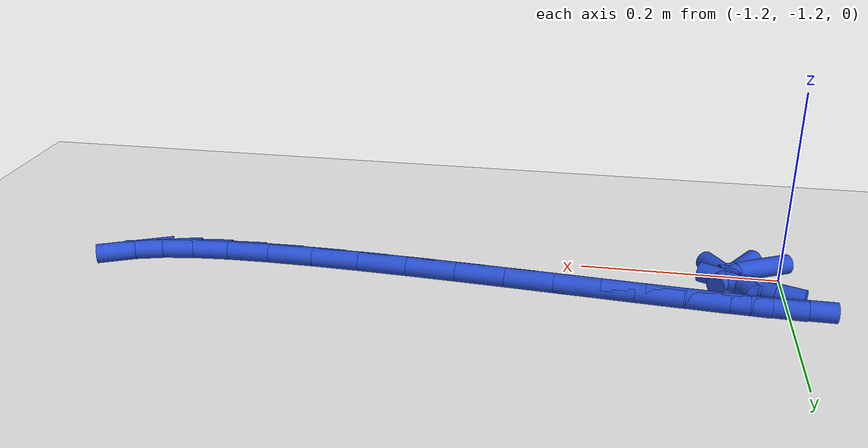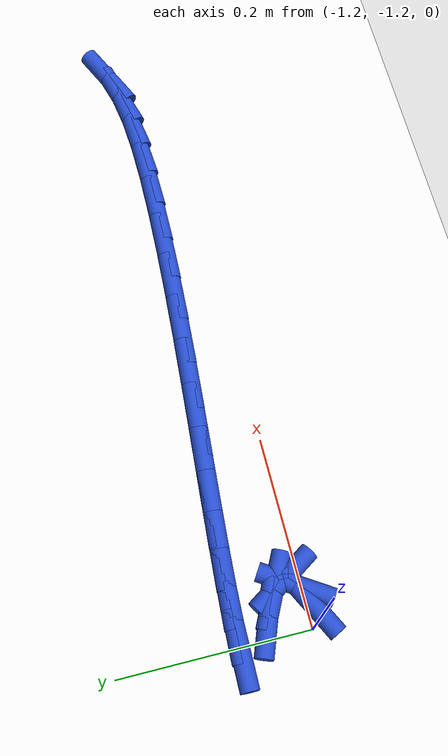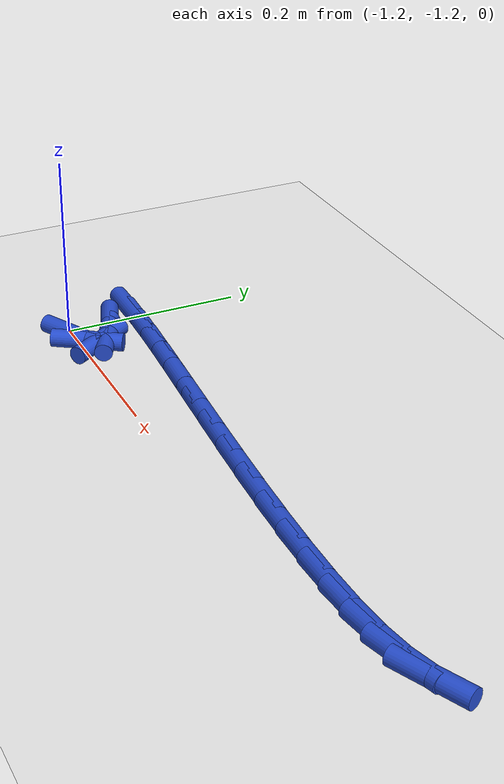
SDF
<sdf version="1.6">
 <world name="default">
  <model name="ground_plane">
   <static>1</static>
   <link name="link">
    <collision name="collision">
     <geometry><plane><normal>0 0 1</normal><size>100 100</size></plane></geometry>
     <surface><friction><ode><mu>100</mu><mu2>50</mu2></ode></friction></surface>
    </collision>
    <visual name="visual">
     <cast_shadows>0</cast_shadows>
     <geometry><plane><normal>0 0 1</normal><size>100 100</size></plane></geometry>
     <material>
      <script><uri>file://media/materials/scripts/gazebo.material</uri><name>Gazebo/WhiteGlow</name></script>
     </material>
    </visual>
   </link>
  </model>
  <model name="line">
   <link name="link_192">
    <pose>-1.1745917378531383 -1.2043105066418216 0.01 0 1.57 0.4677497410405314</pose>
    <collision name="collision">
     <geometry><cylinder><radius>0.01</radius><length>0.08</length></cylinder></geometry>
    </collision>
    <visual name="visual">
     <material>
      <script><name>Gazebo/Blue</name><uri>file://media/materials/scripts/gazebo.material</uri></script>
     </material>
     <geometry><cylinder><radius>0.01</radius><length>0.08</length></cylinder></geometry>
    </visual>
   </link>
   <link name="link_193">
    <pose>-1.1547757456888592 -1.194300691380257 0.01 0 1.57 0.9987103225946377</pose>
    <collision name="collision">
     <geometry><cylinder><radius>0.01</radius><length>0.08</length></cylinder></geometry>
    </collision>
    <visual name="visual">
     <material>
      <script><name>Gazebo/Blue</name><uri>file://media/materials/scripts/gazebo.material</uri></script>
     </material>
     <geometry><cylinder><radius>0.01</radius><length>0.08</length></cylinder></geometry>
    </visual>
   </link>
   <link name="link_194">
    <pose>-1.1476225590907827 -1.1831918014375011 0.01 0 1.57 -0.9948169776222888</pose>
    <collision name="collision">
     <geometry><cylinder><radius>0.01</radius><length>0.08</length></cylinder></geometry>
    </collision>
    <visual name="visual">
     <material>
      <script><name>Gazebo/Blue</name><uri>file://media/materials/scripts/gazebo.material</uri></script>
     </material>
     <geometry><cylinder><radius>0.01</radius><length>0.08</length></cylinder></geometry>
    </visual>
   </link>
   <link name="link_195">
    <pose>-1.155301146978621 -1.1713683486960287 0.01 0 1.57 -0.4678025852367729</pose>
    <collision name="collision">
     <geometry><cylinder><radius>0.01</radius><length>0.08</length></cylinder></geometry>
    </collision>
    <visual name="visual">
     <material>
      <script><name>Gazebo/Blue</name><uri>file://media/materials/scripts/gazebo.material</uri></script>
     </material>
     <geometry><cylinder><radius>0.01</radius><length>0.08</length></cylinder></geometry>
    </visual>
   </link>
   <link name="link_196">
    <pose>-1.1792627918260172 -1.1592628163902303 0.01 0 1.57 -0.36451311378073226</pose>
    <collision name="collision">
     <geometry><cylinder><radius>0.01</radius><length>0.08</length></cylinder></geometry>
    </collision>
    <visual name="visual">
     <material>
      <script><name>Gazebo/Blue</name><uri>file://media/materials/scripts/gazebo.material</uri></script>
     </material>
     <geometry><cylinder><radius>0.01</radius><length>0.08</length></cylinder></geometry>
    </visual>
   </link>
   <link name="link_202">
    <pose>-1.2026771078357616 -1.124938108552081 0.01 0 1.57 -0.015929395568199233</pose>
    <collision name="collision">
     <geometry><cylinder><radius>0.01</radius><length>0.08</length></cylinder></geometry>
    </collision>
    <visual name="visual">
     <material>
      <script><name>Gazebo/Blue</name><uri>file://media/materials/scripts/gazebo.material</uri></script>
     </material>
     <geometry><cylinder><radius>0.01</radius><length>0.08</length></cylinder></geometry>
    </visual>
   </link>
   <link name="link_203">
    <pose>-1.1759052530190301 -1.1253646040919565 0.01 0 1.57 -0.0478047484425077</pose>
    <collision name="collision">
     <geometry><cylinder><radius>0.01</radius><length>0.08</length></cylinder></geometry>
    </collision>
    <visual name="visual">
     <material>
      <script><name>Gazebo/Blue</name><uri>file://media/materials/scripts/gazebo.material</uri></script>
     </material>
     <geometry><cylinder><radius>0.01</radius><length>0.08</length></cylinder></geometry>
    </visual>
   </link>
   <link name="link_204">
    <pose>-1.1427871915544134 -1.1269490118189078 0.01 0 1.57 -0.06518155798572671</pose>
    <collision name="collision">
     <geometry><cylinder><radius>0.01</radius><length>0.08</length></cylinder></geometry>
    </collision>
    <visual name="visual">
     <material>
      <script><name>Gazebo/Blue</name><uri>file://media/materials/scripts/gazebo.material</uri></script>
     </material>
     <geometry><cylinder><radius>0.01</radius><length>0.08</length></cylinder></geometry>
    </visual>
   </link>
   <link name="link_205">
    <pose>-1.1042642541751548 -1.1294635590360718 0.01 0 1.57 -0.07469624490263446</pose>
    <collision name="collision">
     <geometry><cylinder><radius>0.01</radius><length>0.08</length></cylinder></geometry>
    </collision>
    <visual name="visual">
     <material>
      <script><name>Gazebo/Blue</name><uri>file://media/materials/scripts/gazebo.material</uri></script>
     </material>
     <geometry><cylinder><radius>0.01</radius><length>0.08</length></cylinder></geometry>
    </visual>
   </link>
   <link name="link_206">
    <pose>-1.061277771614497 -1.132680473046587 0.01 0 1.57 -0.0792063715145797</pose>
    <collision name="collision">
     <geometry><cylinder><radius>0.01</radius><length>0.08</length></cylinder></geometry>
    </collision>
    <visual name="visual">
     <material>
      <script><name>Gazebo/Blue</name><uri>file://media/materials/scripts/gazebo.material</uri></script>
     </material>
     <geometry><cylinder><radius>0.01</radius><length>0.08</length></cylinder></geometry>
    </visual>
   </link>
   <link name="link_207">
    <pose>-1.0147690746056817 -1.13637198115359 0.01 0 1.57 -0.08005593709937124</pose>
    <collision name="collision">
     <geometry><cylinder><radius>0.01</radius><length>0.08</length></cylinder></geometry>
    </collision>
    <visual name="visual">
     <material>
      <script><name>Gazebo/Blue</name><uri>file://media/materials/scripts/gazebo.material</uri></script>
     </material>
     <geometry><cylinder><radius>0.01</radius><length>0.08</length></cylinder></geometry>
    </visual>
   </link>
   <link name="link_208">
    <pose>-0.965679493881951 -1.140310310660218 0.01 0 1.57 -0.07785230085269129</pose>
    <collision name="collision">
     <geometry><cylinder><radius>0.01</radius><length>0.08</length></cylinder></geometry>
    </collision>
    <visual name="visual">
     <material>
      <script><name>Gazebo/Blue</name><uri>file://media/materials/scripts/gazebo.material</uri></script>
     </material>
     <geometry><cylinder><radius>0.01</radius><length>0.08</length></cylinder></geometry>
    </visual>
   </link>
   <link name="link_209">
    <pose>-0.9149503601765474 -1.1442676888696093 0.01 0 1.57 -0.07276353256070285</pose>
    <collision name="collision">
     <geometry><cylinder><radius>0.01</radius><length>0.08</length></cylinder></geometry>
    </collision>
    <visual name="visual">
     <material>
      <script><name>Gazebo/Blue</name><uri>file://media/materials/scripts/gazebo.material</uri></script>
     </material>
     <geometry><cylinder><radius>0.01</radius><length>0.08</length></cylinder></geometry>
    </visual>
   </link>
   <link name="link_210">
    <pose>-0.8635230042227136 -1.1480163430849006 0.01 0 1.57 -0.06462038825323065</pose>
    <collision name="collision">
     <geometry><cylinder><radius>0.01</radius><length>0.08</length></cylinder></geometry>
    </collision>
    <visual name="visual">
     <material>
      <script><name>Gazebo/Blue</name><uri>file://media/materials/scripts/gazebo.material</uri></script>
     </material>
     <geometry><cylinder><radius>0.01</radius><length>0.08</length></cylinder></geometry>
    </visual>
   </link>
   <link name="link_211">
    <pose>-0.812338756753691 -1.1513285006092295 0.01 0 1.57 -0.052908541278010465</pose>
    <collision name="collision">
     <geometry><cylinder><radius>0.01</radius><length>0.08</length></cylinder></geometry>
    </collision>
    <visual name="visual">
     <material>
      <script><name>Gazebo/Blue</name><uri>file://media/materials/scripts/gazebo.material</uri></script>
     </material>
     <geometry><cylinder><radius>0.01</radius><length>0.08</length></cylinder></geometry>
    </visual>
   </link>
   <link name="link_212">
    <pose>-0.7623389485027231 -1.153976388745734 0.01 0 1.57 -0.03665994040148038</pose>
    <collision name="collision">
     <geometry><cylinder><radius>0.01</radius><length>0.08</length></cylinder></geometry>
    </collision>
    <visual name="visual">
     <material>
      <script><name>Gazebo/Blue</name><uri>file://media/materials/scripts/gazebo.material</uri></script>
     </material>
     <geometry><cylinder><radius>0.01</radius><length>0.08</length></cylinder></geometry>
    </visual>
   </link>
   <link name="link_213">
    <pose>-0.7144649102030498 -1.1557322347975503 0.01 0 1.57 -0.01419397508579266</pose>
    <collision name="collision">
     <geometry><cylinder><radius>0.01</radius><length>0.08</length></cylinder></geometry>
    </collision>
    <visual name="visual">
     <material>
      <script><name>Gazebo/Blue</name><uri>file://media/materials/scripts/gazebo.material</uri></script>
     </material>
     <geometry><cylinder><radius>0.01</radius><length>0.08</length></cylinder></geometry>
    </visual>
   </link>
   <link name="link_214">
    <pose>-0.6696579725879169 -1.1563682660678167 0.01 0 1.57 0.018109211635063096</pose>
    <collision name="collision">
     <geometry><cylinder><radius>0.01</radius><length>0.08</length></cylinder></geometry>
    </collision>
    <visual name="visual">
     <material>
      <script><name>Gazebo/Blue</name><uri>file://media/materials/scripts/gazebo.material</uri></script>
     </material>
     <geometry><cylinder><radius>0.01</radius><length>0.08</length></cylinder></geometry>
    </visual>
   </link>
   <link name="link_215">
    <pose>-0.6287661337699274 -1.1556276661444231 0.01 0 1.57 0.06975901123108093</pose>
    <collision name="collision">
     <geometry><cylinder><radius>0.01</radius><length>0.08</length></cylinder></geometry>
    </collision>
    <visual name="visual">
     <material>
      <script><name>Gazebo/Blue</name><uri>file://media/materials/scripts/gazebo.material</uri></script>
     </material>
     <geometry><cylinder><radius>0.01</radius><length>0.08</length></cylinder></geometry>
    </visual>
   </link>
   <link name="link_216">
    <pose>-0.592014324815865 -1.1530597294719467 0.01 0 1.57 0.14976097735346652</pose>
    <collision name="collision">
     <geometry><cylinder><radius>0.01</radius><length>0.08</length></cylinder></geometry>
    </collision>
    <visual name="visual">
     <material>
      <script><name>Gazebo/Blue</name><uri>file://media/materials/scripts/gazebo.material</uri></script>
     </material>
     <geometry><cylinder><radius>0.01</radius><length>0.08</length></cylinder></geometry>
    </visual>
   </link>
   <link name="link_217">
    <pose>-0.5593723421113738 -1.148134356399115 0.01 0 1.57 0.26700803114761873</pose>
    <collision name="collision">
     <geometry><cylinder><radius>0.01</radius><length>0.08</length></cylinder></geometry>
    </collision>
    <visual name="visual">
     <material>
      <script><name>Gazebo/Blue</name><uri>file://media/materials/scripts/gazebo.material</uri></script>
     </material>
     <geometry><cylinder><radius>0.01</radius><length>0.08</length></cylinder></geometry>
    </visual>
   </link>
   <link name="link_218">
    <pose>-0.5308092137749044 -1.1403212082014 0.01 0 1.57 0.4295973491846979</pose>
    <collision name="collision">
     <geometry><cylinder><radius>0.01</radius><length>0.08</length></cylinder></geometry>
    </collision>
    <visual name="visual">
     <material>
      <script><name>Gazebo/Blue</name><uri>file://media/materials/scripts/gazebo.material</uri></script>
     </material>
     <geometry><cylinder><radius>0.01</radius><length>0.08</length></cylinder></geometry>
    </visual>
   </link>
  </model>
 </world>
</sdf>
